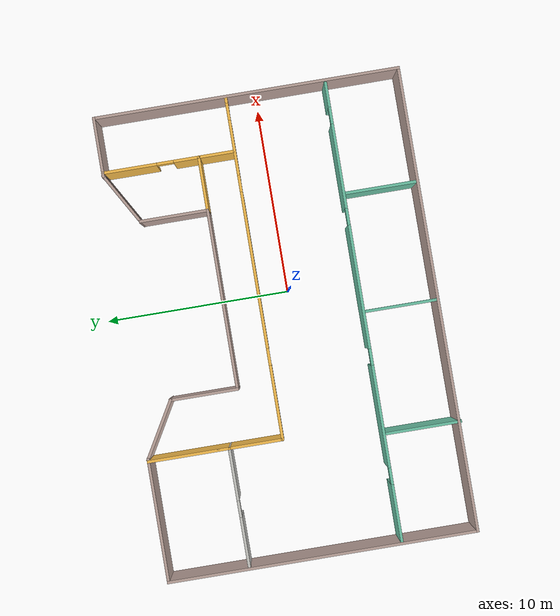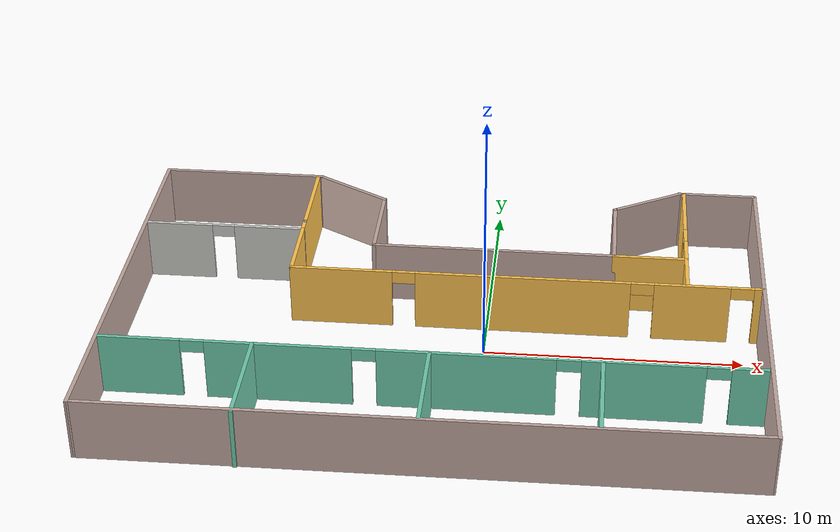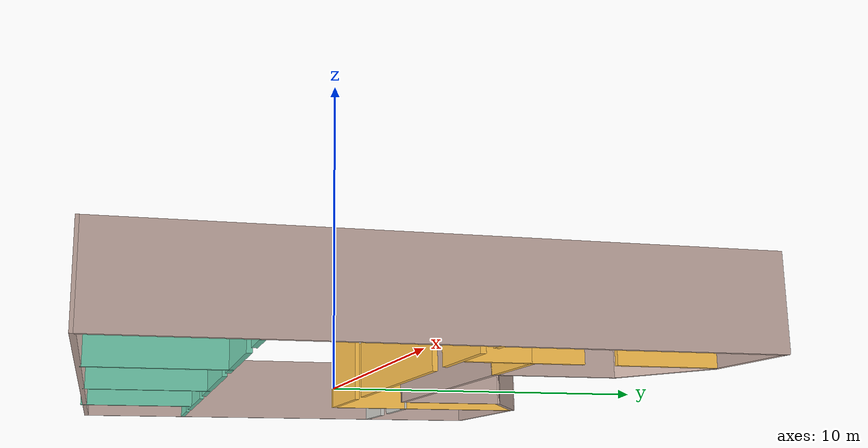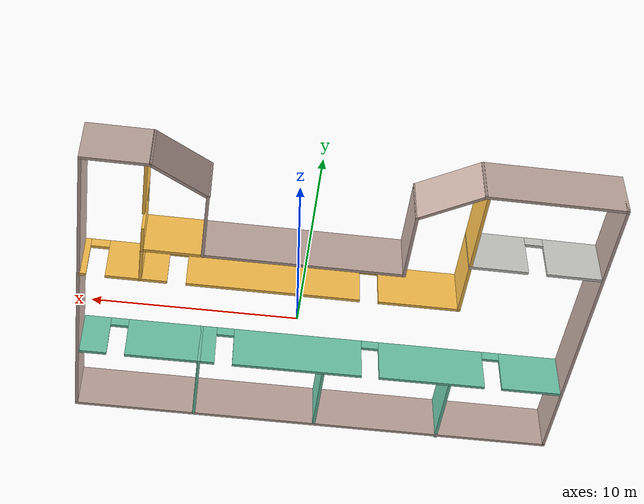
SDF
<?xml version='1.0'?>
<sdf version='1.6'>
  <model name='Building'>
    <pose frame=''>-1.76271 0.500528 0 0 -0 0</pose>
    <link name='Wall_10'>
      <collision name='Wall_10_Collision'>
        <geometry>
          <box>
            <size>3.25 0.15 2.5</size>
          </box>
        </geometry>
        <pose frame=''>0 0 1.25 0 -0 0</pose>
      </collision>
      <visual name='Wall_10_Visual'>
        <pose frame=''>0 0 1.25 0 -0 0</pose>
        <geometry>
          <box>
            <size>3.25 0.15 2.5</size>
          </box>
        </geometry>
        <material>
          <script>
            <uri>file://media/materials/scripts/gazebo.material</uri>
            <name>Gazebo/Grey</name>
          </script>
          <ambient>0.760784 0.662745 0.627451 1</ambient>
        </material>
        <meta>
          <layer>0</layer>
        </meta>
      </visual>
      <pose frame=''>10.8929 8.18406 0 0 -0 0</pose>
    </link>
    <link name='Wall_11'>
      <collision name='Wall_11_Collision'>
        <geometry>
          <box>
            <size>16.5 0.15 2.5</size>
          </box>
        </geometry>
        <pose frame=''>0 0 1.25 0 -0 0</pose>
      </collision>
      <visual name='Wall_11_Visual'>
        <pose frame=''>0 0 1.25 0 -0 0</pose>
        <geometry>
          <box>
            <size>16.5 0.15 2.5</size>
          </box>
        </geometry>
        <material>
          <script>
            <uri>file://media/materials/scripts/gazebo.material</uri>
            <name>Gazebo/Grey</name>
          </script>
          <ambient>0.760784 0.662745 0.627451 1</ambient>
        </material>
        <meta>
          <layer>0</layer>
        </meta>
      </visual>
      <pose frame=''>12.4429 0.009057 0 0 0 -1.5708</pose>
    </link>
    <link name='Wall_12'>
      <collision name='Wall_12_Collision'>
        <geometry>
          <box>
            <size>25.0362 0.15 2.5</size>
          </box>
        </geometry>
        <pose frame=''>0 0 1.25 0 -0 0</pose>
      </collision>
      <visual name='Wall_12_Visual'>
        <pose frame=''>0 0 1.25 0 -0 0</pose>
        <geometry>
          <box>
            <size>25.0362 0.15 2.5</size>
          </box>
        </geometry>
        <material>
          <script>
            <uri>file://media/materials/scripts/gazebo.material</uri>
            <name>Gazebo/Grey</name>
          </script>
          <ambient>0.760784 0.662745 0.627451 1</ambient>
        </material>
        <meta>
          <layer>0</layer>
        </meta>
      </visual>
      <pose frame=''>0 -8.22844 0 0 0 -3.13657</pose>
    </link>
    <link name='Wall_2'>
      <collision name='Wall_2_Collision'>
        <geometry>
          <box>
            <size>16.75 0.15 2.5</size>
          </box>
        </geometry>
        <pose frame=''>0 0 1.25 0 -0 0</pose>
      </collision>
      <visual name='Wall_2_Visual'>
        <pose frame=''>0 0 1.25 0 -0 0</pose>
        <geometry>
          <box>
            <size>16.75 0.15 2.5</size>
          </box>
        </geometry>
        <material>
          <script>
            <uri>file://media/materials/scripts/gazebo.material</uri>
            <name>Gazebo/Grey</name>
          </script>
          <ambient>0.760784 0.662745 0.627451 1</ambient>
        </material>
        <meta>
          <layer>0</layer>
        </meta>
      </visual>
      <pose frame=''>-12.4429 0.009057 0 0 0 -1.5708</pose>
    </link>
    <link name='Wall_24'>
      <collision name='Wall_24_Collision'>
        <geometry>
          <box>
            <size>0.15 0.15 2.5</size>
          </box>
        </geometry>
        <pose frame=''>0 0 1.25 0 -0 0</pose>
      </collision>
      <visual name='Wall_24_Visual'>
        <pose frame=''>0 0 1.25 0 -0 0</pose>
        <geometry>
          <box>
            <size>0.15 0.15 2.5</size>
          </box>
        </geometry>
        <material>
          <script>
            <uri>file://media/materials/scripts/gazebo.material</uri>
            <name>Gazebo/Grey</name>
          </script>
          <ambient>0 0 0 0</ambient>
        </material>
        <meta>
          <layer>0</layer>
        </meta>
      </visual>
      <pose frame=''>-5.97046 4.57329 0 0 -0 0</pose>
    </link>
    <link name='Wall_25'>
      <pose frame=''>-9.15897 3.96574 0 0 -0 0.002757</pose>
      <visual name='Wall_25_Visual_0'>
        <pose frame=''>-1.89266 0 1.25 0 -0 0</pose>
        <geometry>
          <box>
            <size>2.74392 0.15 2.5</size>
          </box>
        </geometry>
        <material>
          <script>
            <uri>file://media/materials/scripts/gazebo.material</uri>
            <name>Gazebo/CeilingTiled</name>
          </script>
          <ambient>1 1 1 1</ambient>
        </material>
        <meta>
          <layer>0</layer>
        </meta>
      </visual>
      <collision name='Wall_25_Collision_0'>
        <geometry>
          <box>
            <size>2.74392 0.15 2.5</size>
          </box>
        </geometry>
        <pose frame=''>-1.89266 0 1.25 0 -0 0</pose>
      </collision>
      <visual name='Wall_25_Visual_1'>
        <pose frame=''>1.82196 0 1.25 0 -0 0</pose>
        <geometry>
          <box>
            <size>2.88532 0.15 2.5</size>
          </box>
        </geometry>
        <material>
          <script>
            <uri>file://media/materials/scripts/gazebo.material</uri>
            <name>Gazebo/CeilingTiled</name>
          </script>
          <ambient>1 1 1 1</ambient>
        </material>
        <meta>
          <layer>0</layer>
        </meta>
      </visual>
      <collision name='Wall_25_Collision_1'>
        <geometry>
          <box>
            <size>2.88532 0.15 2.5</size>
          </box>
        </geometry>
        <pose frame=''>1.82196 0 1.25 0 -0 0</pose>
      </collision>
      <visual name='Wall_25_Visual_2'>
        <pose frame=''>-0.070705 0 2.25 0 -0 0</pose>
        <geometry>
          <box>
            <size>0.9 0.15 0.5</size>
          </box>
        </geometry>
        <material>
          <script>
            <uri>file://media/materials/scripts/gazebo.material</uri>
            <name>Gazebo/CeilingTiled</name>
          </script>
          <ambient>1 1 1 1</ambient>
        </material>
        <meta>
          <layer>0</layer>
        </meta>
      </visual>
      <collision name='Wall_25_Collision_2'>
        <geometry>
          <box>
            <size>0.9 0.15 0.5</size>
          </box>
        </geometry>
        <pose frame=''>-0.070705 0 2.25 0 -0 0</pose>
      </collision>
    </link>
    <link name='Wall_26'>
      <collision name='Wall_26_Collision'>
        <geometry>
          <box>
            <size>4.48241 0.15 2.5</size>
          </box>
        </geometry>
        <pose frame=''>0 0 1.25 0 -0 0</pose>
      </collision>
      <visual name='Wall_26_Visual'>
        <pose frame=''>0 0 1.25 0 -0 0</pose>
        <geometry>
          <box>
            <size>4.48241 0.15 2.5</size>
          </box>
        </geometry>
        <material>
          <script>
            <uri>file://media/materials/scripts/gazebo.material</uri>
            <name>Gazebo/Grey</name>
          </script>
          <ambient>1 0.764706 0.305882 1</ambient>
        </material>
        <meta>
          <layer>0</layer>
        </meta>
      </visual>
      <pose frame=''>-5.9694 6.14074 0 0 -0 1.5708</pose>
    </link>
    <link name='Wall_34'>
      <pose frame=''>-0.025499 -4.23651 0 0 -0 0</pose>
      <visual name='Wall_34_Visual_0'>
        <pose frame=''>-10.8138 0 1.25 0 -0 0</pose>
        <geometry>
          <box>
            <size>3.12241 0.15 2.5</size>
          </box>
        </geometry>
        <material>
          <script>
            <uri>file://media/materials/scripts/gazebo.material</uri>
            <name>Gazebo/Grey</name>
          </script>
          <ambient>0.435294 0.796078 0.67451 1</ambient>
        </material>
        <meta>
          <layer>0</layer>
        </meta>
      </visual>
      <collision name='Wall_34_Collision_0'>
        <geometry>
          <box>
            <size>3.12241 0.15 2.5</size>
          </box>
        </geometry>
        <pose frame=''>-10.8138 0 1.25 0 -0 0</pose>
      </collision>
      <visual name='Wall_34_Visual_1'>
        <pose frame=''>-5.60111 0 1.25 0 -0 0</pose>
        <geometry>
          <box>
            <size>5.50295 0.15 2.5</size>
          </box>
        </geometry>
        <material>
          <script>
            <uri>file://media/materials/scripts/gazebo.material</uri>
            <name>Gazebo/Grey</name>
          </script>
          <ambient>0.435294 0.796078 0.67451 1</ambient>
        </material>
        <meta>
          <layer>0</layer>
        </meta>
      </visual>
      <collision name='Wall_34_Collision_1'>
        <geometry>
          <box>
            <size>5.50295 0.15 2.5</size>
          </box>
        </geometry>
        <pose frame=''>-5.60111 0 1.25 0 -0 0</pose>
      </collision>
      <visual name='Wall_34_Visual_2'>
        <pose frame=''>1.36681 0 1.25 0 -0 0</pose>
        <geometry>
          <box>
            <size>6.63288 0.15 2.5</size>
          </box>
        </geometry>
        <material>
          <script>
            <uri>file://media/materials/scripts/gazebo.material</uri>
            <name>Gazebo/Grey</name>
          </script>
          <ambient>0.435294 0.796078 0.67451 1</ambient>
        </material>
        <meta>
          <layer>0</layer>
        </meta>
      </visual>
      <collision name='Wall_34_Collision_2'>
        <geometry>
          <box>
            <size>6.63288 0.15 2.5</size>
          </box>
        </geometry>
        <pose frame=''>1.36681 0 1.25 0 -0 0</pose>
      </collision>
      <visual name='Wall_34_Visual_3'>
        <pose frame=''>7.85047 0 1.25 0 -0 0</pose>
        <geometry>
          <box>
            <size>4.53444 0.15 2.5</size>
          </box>
        </geometry>
        <material>
          <script>
            <uri>file://media/materials/scripts/gazebo.material</uri>
            <name>Gazebo/Grey</name>
          </script>
          <ambient>0.435294 0.796078 0.67451 1</ambient>
        </material>
        <meta>
          <layer>0</layer>
        </meta>
      </visual>
      <collision name='Wall_34_Collision_3'>
        <geometry>
          <box>
            <size>4.53444 0.15 2.5</size>
          </box>
        </geometry>
        <pose frame=''>7.85047 0 1.25 0 -0 0</pose>
      </collision>
      <visual name='Wall_34_Visual_4'>
        <pose frame=''>11.6963 0 1.25 0 -0 0</pose>
        <geometry>
          <box>
            <size>1.35731 0.15 2.5</size>
          </box>
        </geometry>
        <material>
          <script>
            <uri>file://media/materials/scripts/gazebo.material</uri>
            <name>Gazebo/Grey</name>
          </script>
          <ambient>0.435294 0.796078 0.67451 1</ambient>
        </material>
        <meta>
          <layer>0</layer>
        </meta>
      </visual>
      <collision name='Wall_34_Collision_4'>
        <geometry>
          <box>
            <size>1.35731 0.15 2.5</size>
          </box>
        </geometry>
        <pose frame=''>11.6963 0 1.25 0 -0 0</pose>
      </collision>
      <visual name='Wall_34_Visual_5'>
        <pose frame=''>-8.80259 0 2.25 0 -0 0</pose>
        <geometry>
          <box>
            <size>0.9 0.15 0.5</size>
          </box>
        </geometry>
        <material>
          <script>
            <uri>file://media/materials/scripts/gazebo.material</uri>
            <name>Gazebo/Grey</name>
          </script>
          <ambient>0.435294 0.796078 0.67451 1</ambient>
        </material>
        <meta>
          <layer>0</layer>
        </meta>
      </visual>
      <collision name='Wall_34_Collision_5'>
        <geometry>
          <box>
            <size>0.9 0.15 0.5</size>
          </box>
        </geometry>
        <pose frame=''>-8.80259 0 2.25 0 -0 0</pose>
      </collision>
      <visual name='Wall_34_Visual_6'>
        <pose frame=''>-2.39964 0 2.25 0 -0 0</pose>
        <geometry>
          <box>
            <size>0.9 0.15 0.5</size>
          </box>
        </geometry>
        <material>
          <script>
            <uri>file://media/materials/scripts/gazebo.material</uri>
            <name>Gazebo/Grey</name>
          </script>
          <ambient>0.435294 0.796078 0.67451 1</ambient>
        </material>
        <meta>
          <layer>0</layer>
        </meta>
      </visual>
      <collision name='Wall_34_Collision_6'>
        <geometry>
          <box>
            <size>0.9 0.15 0.5</size>
          </box>
        </geometry>
        <pose frame=''>-2.39964 0 2.25 0 -0 0</pose>
      </collision>
      <visual name='Wall_34_Visual_7'>
        <pose frame=''>5.13325 0 2.25 0 -0 0</pose>
        <geometry>
          <box>
            <size>0.9 0.15 0.5</size>
          </box>
        </geometry>
        <material>
          <script>
            <uri>file://media/materials/scripts/gazebo.material</uri>
            <name>Gazebo/Grey</name>
          </script>
          <ambient>0.435294 0.796078 0.67451 1</ambient>
        </material>
        <meta>
          <layer>0</layer>
        </meta>
      </visual>
      <collision name='Wall_34_Collision_7'>
        <geometry>
          <box>
            <size>0.9 0.15 0.5</size>
          </box>
        </geometry>
        <pose frame=''>5.13325 0 2.25 0 -0 0</pose>
      </collision>
      <visual name='Wall_34_Visual_8'>
        <pose frame=''>10.5677 0 2.25 0 -0 0</pose>
        <geometry>
          <box>
            <size>0.9 0.15 0.5</size>
          </box>
        </geometry>
        <material>
          <script>
            <uri>file://media/materials/scripts/gazebo.material</uri>
            <name>Gazebo/Grey</name>
          </script>
          <ambient>0.435294 0.796078 0.67451 1</ambient>
        </material>
        <meta>
          <layer>0</layer>
        </meta>
      </visual>
      <collision name='Wall_34_Collision_8'>
        <geometry>
          <box>
            <size>0.9 0.15 0.5</size>
          </box>
        </geometry>
        <pose frame=''>10.5677 0 2.25 0 -0 0</pose>
      </collision>
    </link>
    <link name='Wall_36'>
      <collision name='Wall_36_Collision'>
        <geometry>
          <box>
            <size>4.25 0.15 2.5</size>
          </box>
        </geometry>
        <pose frame=''>0 0 1.25 0 -0 0</pose>
      </collision>
      <visual name='Wall_36_Visual'>
        <pose frame=''>0 0 1.25 0 -0 0</pose>
        <geometry>
          <box>
            <size>4.25 0.15 2.5</size>
          </box>
        </geometry>
        <material>
          <script>
            <uri>file://media/materials/scripts/gazebo.material</uri>
            <name>Gazebo/Grey</name>
          </script>
          <ambient>0.435294 0.796078 0.67451 1</ambient>
        </material>
        <meta>
          <layer>0</layer>
        </meta>
      </visual>
      <pose frame=''>-6.56822 -6.28651 0 0 0 -1.5708</pose>
    </link>
    <link name='Wall_38'>
      <collision name='Wall_38_Collision'>
        <geometry>
          <box>
            <size>4 0.15 2.5</size>
          </box>
        </geometry>
        <pose frame=''>0 0 1.25 0 -0 0</pose>
      </collision>
      <visual name='Wall_38_Visual'>
        <pose frame=''>0 0 1.25 0 -0 0</pose>
        <geometry>
          <box>
            <size>4 0.15 2.5</size>
          </box>
        </geometry>
        <material>
          <script>
            <uri>file://media/materials/scripts/gazebo.material</uri>
            <name>Gazebo/Grey</name>
          </script>
          <ambient>0.435294 0.796078 0.67451 1</ambient>
        </material>
        <meta>
          <layer>0</layer>
        </meta>
      </visual>
      <pose frame=''>-0.003852 -6.21531 0 0 0 -1.5708</pose>
    </link>
    <link name='Wall_4'>
      <collision name='Wall_4_Collision'>
        <geometry>
          <box>
            <size>6.75 0.15 2.5</size>
          </box>
        </geometry>
        <pose frame=''>0 0 1.25 0 -0 0</pose>
      </collision>
      <visual name='Wall_4_Visual'>
        <pose frame=''>0 0 1.25 0 -0 0</pose>
        <geometry>
          <box>
            <size>6.75 0.15 2.5</size>
          </box>
        </geometry>
        <material>
          <script>
            <uri>file://media/materials/scripts/gazebo.material</uri>
            <name>Gazebo/Grey</name>
          </script>
          <ambient>0.760784 0.662745 0.627451 1</ambient>
        </material>
        <meta>
          <layer>0</layer>
        </meta>
      </visual>
      <pose frame=''>-9.14293 8.30906 0 0 -0 0</pose>
    </link>
    <link name='Wall_40'>
      <collision name='Wall_40_Collision'>
        <geometry>
          <box>
            <size>4 0.15 2.5</size>
          </box>
        </geometry>
        <pose frame=''>0 0 1.25 0 -0 0</pose>
      </collision>
      <visual name='Wall_40_Visual'>
        <pose frame=''>0 0 1.25 0 -0 0</pose>
        <geometry>
          <box>
            <size>4 0.15 2.5</size>
          </box>
        </geometry>
        <material>
          <script>
            <uri>file://media/materials/scripts/gazebo.material</uri>
            <name>Gazebo/Grey</name>
          </script>
          <ambient>0.435294 0.796078 0.67451 1</ambient>
        </material>
        <meta>
          <layer>0</layer>
        </meta>
      </visual>
      <pose frame=''>6.34529 -6.16151 0 0 0 -1.5708</pose>
    </link>
    <link name='Wall_42'>
      <collision name='Wall_42_Collision'>
        <geometry>
          <box>
            <size>3 0.15 2.5</size>
          </box>
        </geometry>
        <pose frame=''>0 0 1.25 0 -0 0</pose>
      </collision>
      <visual name='Wall_42_Visual'>
        <pose frame=''>0 0 1.25 0 -0 0</pose>
        <geometry>
          <box>
            <size>3 0.15 2.5</size>
          </box>
        </geometry>
        <material>
          <script>
            <uri>file://media/materials/scripts/gazebo.material</uri>
            <name>Gazebo/Grey</name>
          </script>
          <ambient>1 0.764706 0.305882 1</ambient>
        </material>
        <meta>
          <layer>0</layer>
        </meta>
      </visual>
      <pose frame=''>8.08325 3.03406 0 0 -0 0</pose>
    </link>
    <link name='Wall_46'>
      <collision name='Wall_46_Collision'>
        <geometry>
          <box>
            <size>3 0.15 2.5</size>
          </box>
        </geometry>
        <pose frame=''>0 0 1.25 0 -0 0</pose>
      </collision>
      <visual name='Wall_46_Visual'>
        <pose frame=''>0 0 1.25 0 -0 0</pose>
        <geometry>
          <box>
            <size>3 0.15 2.5</size>
          </box>
        </geometry>
        <material>
          <script>
            <uri>file://media/materials/scripts/gazebo.material</uri>
            <name>Gazebo/Grey</name>
          </script>
          <ambient>1 0.764706 0.305882 1</ambient>
        </material>
        <meta>
          <layer>0</layer>
        </meta>
      </visual>
      <pose frame=''>-5.9694 2.53195 0 0 0 -1.5708</pose>
    </link>
    <link name='Wall_5'>
      <collision name='Wall_5_Collision'>
        <geometry>
          <box>
            <size>3.5 0.15 2.5</size>
          </box>
        </geometry>
        <pose frame=''>0 0 1.25 0 -0 0</pose>
      </collision>
      <visual name='Wall_5_Visual'>
        <pose frame=''>0 0 1.25 0 -0 0</pose>
        <geometry>
          <box>
            <size>3.5 0.15 2.5</size>
          </box>
        </geometry>
        <material>
          <script>
            <uri>file://media/materials/scripts/gazebo.material</uri>
            <name>Gazebo/Grey</name>
          </script>
          <ambient>0.760784 0.662745 0.627451 1</ambient>
        </material>
        <meta>
          <layer>0</layer>
        </meta>
      </visual>
      <pose frame=''>-4.39234 7.47156 0 0 0 -0.523599</pose>
    </link>
    <link name='Wall_50'>
      <pose frame=''>3.2056 1.10695 0 0 -0 0</pose>
      <visual name='Wall_50_Visual_0'>
        <pose frame=''>-7.22319 0 1.25 0 -0 0</pose>
        <geometry>
          <box>
            <size>4.05361 0.15 2.5</size>
          </box>
        </geometry>
        <material>
          <script>
            <uri>file://media/materials/scripts/gazebo.material</uri>
            <name>Gazebo/Grey</name>
          </script>
          <ambient>1 0.764706 0.305882 1</ambient>
        </material>
        <meta>
          <layer>0</layer>
        </meta>
      </visual>
      <collision name='Wall_50_Collision_0'>
        <geometry>
          <box>
            <size>4.05361 0.15 2.5</size>
          </box>
        </geometry>
        <pose frame=''>-7.22319 0 1.25 0 -0 0</pose>
      </collision>
      <visual name='Wall_50_Visual_1'>
        <pose frame=''>-0.089024 0 1.25 0 -0 0</pose>
        <geometry>
          <box>
            <size>8.41472 0.15 2.5</size>
          </box>
        </geometry>
        <material>
          <script>
            <uri>file://media/materials/scripts/gazebo.material</uri>
            <name>Gazebo/Grey</name>
          </script>
          <ambient>1 0.764706 0.305882 1</ambient>
        </material>
        <meta>
          <layer>0</layer>
        </meta>
      </visual>
      <collision name='Wall_50_Collision_1'>
        <geometry>
          <box>
            <size>8.41472 0.15 2.5</size>
          </box>
        </geometry>
        <pose frame=''>-0.089024 0 1.25 0 -0 0</pose>
      </collision>
      <visual name='Wall_50_Visual_2'>
        <pose frame=''>6.49473 0 1.25 0 -0 0</pose>
        <geometry>
          <box>
            <size>2.95278 0.15 2.5</size>
          </box>
        </geometry>
        <material>
          <script>
            <uri>file://media/materials/scripts/gazebo.material</uri>
            <name>Gazebo/Grey</name>
          </script>
          <ambient>1 0.764706 0.305882 1</ambient>
        </material>
        <meta>
          <layer>0</layer>
        </meta>
      </visual>
      <collision name='Wall_50_Collision_2'>
        <geometry>
          <box>
            <size>2.95278 0.15 2.5</size>
          </box>
        </geometry>
        <pose frame=''>6.49473 0 1.25 0 -0 0</pose>
      </collision>
      <visual name='Wall_50_Visual_3'>
        <pose frame=''>9.06056 0 1.25 0 -0 0</pose>
        <geometry>
          <box>
            <size>0.378883 0.15 2.5</size>
          </box>
        </geometry>
        <material>
          <script>
            <uri>file://media/materials/scripts/gazebo.material</uri>
            <name>Gazebo/Grey</name>
          </script>
          <ambient>1 0.764706 0.305882 1</ambient>
        </material>
        <meta>
          <layer>0</layer>
        </meta>
      </visual>
      <collision name='Wall_50_Collision_3'>
        <geometry>
          <box>
            <size>0.378883 0.15 2.5</size>
          </box>
        </geometry>
        <pose frame=''>9.06056 0 1.25 0 -0 0</pose>
      </collision>
      <visual name='Wall_50_Visual_4'>
        <pose frame=''>-4.74639 0 2.25 0 -0 0</pose>
        <geometry>
          <box>
            <size>0.9 0.15 0.5</size>
          </box>
        </geometry>
        <material>
          <script>
            <uri>file://media/materials/scripts/gazebo.material</uri>
            <name>Gazebo/Grey</name>
          </script>
          <ambient>1 0.764706 0.305882 1</ambient>
        </material>
        <meta>
          <layer>0</layer>
        </meta>
      </visual>
      <collision name='Wall_50_Collision_4'>
        <geometry>
          <box>
            <size>0.9 0.15 0.5</size>
          </box>
        </geometry>
        <pose frame=''>-4.74639 0 2.25 0 -0 0</pose>
      </collision>
      <visual name='Wall_50_Visual_5'>
        <pose frame=''>4.56834 0 2.25 0 -0 0</pose>
        <geometry>
          <box>
            <size>0.9 0.15 0.5</size>
          </box>
        </geometry>
        <material>
          <script>
            <uri>file://media/materials/scripts/gazebo.material</uri>
            <name>Gazebo/Grey</name>
          </script>
          <ambient>1 0.764706 0.305882 1</ambient>
        </material>
        <meta>
          <layer>0</layer>
        </meta>
      </visual>
      <collision name='Wall_50_Collision_5'>
        <geometry>
          <box>
            <size>0.9 0.15 0.5</size>
          </box>
        </geometry>
        <pose frame=''>4.56834 0 2.25 0 -0 0</pose>
      </collision>
      <visual name='Wall_50_Visual_6'>
        <pose frame=''>8.42112 0 2.25 0 -0 0</pose>
        <geometry>
          <box>
            <size>0.9 0.15 0.5</size>
          </box>
        </geometry>
        <material>
          <script>
            <uri>file://media/materials/scripts/gazebo.material</uri>
            <name>Gazebo/Grey</name>
          </script>
          <ambient>1 0.764706 0.305882 1</ambient>
        </material>
        <meta>
          <layer>0</layer>
        </meta>
      </visual>
      <collision name='Wall_50_Collision_6'>
        <geometry>
          <box>
            <size>0.9 0.15 0.5</size>
          </box>
        </geometry>
        <pose frame=''>8.42112 0 2.25 0 -0 0</pose>
      </collision>
    </link>
    <link name='Wall_52'>
      <pose frame=''>9.50825 5.58406 0 0 -0 1.5708</pose>
      <visual name='Wall_52_Visual_0'>
        <pose frame=''>-1.90895 0 1.25 0 -0 0</pose>
        <geometry>
          <box>
            <size>1.43209 0.15 2.5</size>
          </box>
        </geometry>
        <material>
          <script>
            <uri>file://media/materials/scripts/gazebo.material</uri>
            <name>Gazebo/Grey</name>
          </script>
          <ambient>1 0.764706 0.305882 1</ambient>
        </material>
        <meta>
          <layer>0</layer>
        </meta>
      </visual>
      <collision name='Wall_52_Collision_0'>
        <geometry>
          <box>
            <size>1.43209 0.15 2.5</size>
          </box>
        </geometry>
        <pose frame=''>-1.90895 0 1.25 0 -0 0</pose>
      </collision>
      <visual name='Wall_52_Visual_1'>
        <pose frame=''>1.16605 0 1.25 0 -0 0</pose>
        <geometry>
          <box>
            <size>2.91791 0.15 2.5</size>
          </box>
        </geometry>
        <material>
          <script>
            <uri>file://media/materials/scripts/gazebo.material</uri>
            <name>Gazebo/Grey</name>
          </script>
          <ambient>1 0.764706 0.305882 1</ambient>
        </material>
        <meta>
          <layer>0</layer>
        </meta>
      </visual>
      <collision name='Wall_52_Collision_1'>
        <geometry>
          <box>
            <size>2.91791 0.15 2.5</size>
          </box>
        </geometry>
        <pose frame=''>1.16605 0 1.25 0 -0 0</pose>
      </collision>
      <visual name='Wall_52_Visual_2'>
        <pose frame=''>-0.742905 0 2.25 0 -0 0</pose>
        <geometry>
          <box>
            <size>0.9 0.15 0.5</size>
          </box>
        </geometry>
        <material>
          <script>
            <uri>file://media/materials/scripts/gazebo.material</uri>
            <name>Gazebo/Grey</name>
          </script>
          <ambient>1 0.764706 0.305882 1</ambient>
        </material>
        <meta>
          <layer>0</layer>
        </meta>
      </visual>
      <collision name='Wall_52_Collision_2'>
        <geometry>
          <box>
            <size>0.9 0.15 0.5</size>
          </box>
        </geometry>
        <pose frame=''>-0.742905 0 2.25 0 -0 0</pose>
      </collision>
    </link>
    <link name='Wall_54'>
      <collision name='Wall_54_Collision'>
        <geometry>
          <box>
            <size>2 0.15 2.5</size>
          </box>
        </geometry>
        <pose frame=''>0 0 1.25 0 -0 0</pose>
      </collision>
      <visual name='Wall_54_Visual'>
        <pose frame=''>0 0 1.25 0 -0 0</pose>
        <geometry>
          <box>
            <size>2 0.15 2.5</size>
          </box>
        </geometry>
        <material>
          <script>
            <uri>file://media/materials/scripts/gazebo.material</uri>
            <name>Gazebo/Grey</name>
          </script>
          <ambient>1 0.764706 0.305882 1</ambient>
        </material>
        <meta>
          <layer>0</layer>
        </meta>
      </visual>
      <pose frame=''>9.50825 2.10906 0 0 0 -1.5708</pose>
    </link>
    <link name='Wall_6'>
      <collision name='Wall_6_Collision'>
        <geometry>
          <box>
            <size>3.75 0.15 2.5</size>
          </box>
        </geometry>
        <pose frame=''>0 0 1.25 0 -0 0</pose>
      </collision>
      <visual name='Wall_6_Visual'>
        <pose frame=''>0 0 1.25 0 -0 0</pose>
        <geometry>
          <box>
            <size>3.75 0.15 2.5</size>
          </box>
        </geometry>
        <material>
          <script>
            <uri>file://media/materials/scripts/gazebo.material</uri>
            <name>Gazebo/Grey</name>
          </script>
          <ambient>0.760784 0.662745 0.627451 1</ambient>
        </material>
        <meta>
          <layer>0</layer>
        </meta>
      </visual>
      <pose frame=''>-2.94175 4.83406 0 0 0 -1.5708</pose>
    </link>
    <link name='Wall_7'>
      <collision name='Wall_7_Collision'>
        <geometry>
          <box>
            <size>9.75 0.15 2.5</size>
          </box>
        </geometry>
        <pose frame=''>0 0 1.25 0 -0 0</pose>
      </collision>
      <visual name='Wall_7_Visual'>
        <pose frame=''>0 0 1.25 0 -0 0</pose>
        <geometry>
          <box>
            <size>9.75 0.15 2.5</size>
          </box>
        </geometry>
        <material>
          <script>
            <uri>file://media/materials/scripts/gazebo.material</uri>
            <name>Gazebo/Grey</name>
          </script>
          <ambient>0.760784 0.662745 0.627451 1</ambient>
        </material>
        <meta>
          <layer>0</layer>
        </meta>
      </visual>
      <pose frame=''>1.85825 3.03406 0 0 -0 0</pose>
    </link>
    <link name='Wall_8'>
      <collision name='Wall_8_Collision'>
        <geometry>
          <box>
            <size>3.75 0.15 2.5</size>
          </box>
        </geometry>
        <pose frame=''>0 0 1.25 0 -0 0</pose>
      </collision>
      <visual name='Wall_8_Visual'>
        <pose frame=''>0 0 1.25 0 -0 0</pose>
        <geometry>
          <box>
            <size>3.75 0.15 2.5</size>
          </box>
        </geometry>
        <material>
          <script>
            <uri>file://media/materials/scripts/gazebo.material</uri>
            <name>Gazebo/Grey</name>
          </script>
          <ambient>0.760784 0.662745 0.627451 1</ambient>
        </material>
        <meta>
          <layer>0</layer>
        </meta>
      </visual>
      <pose frame=''>6.65825 4.83406 0 0 -0 1.5708</pose>
    </link>
    <link name='Wall_9'>
      <collision name='Wall_9_Collision'>
        <geometry>
          <box>
            <size>3.25 0.15 2.5</size>
          </box>
        </geometry>
        <pose frame=''>0 0 1.25 0 -0 0</pose>
      </collision>
      <visual name='Wall_9_Visual'>
        <pose frame=''>0 0 1.25 0 -0 0</pose>
        <geometry>
          <box>
            <size>3.25 0.15 2.5</size>
          </box>
        </geometry>
        <material>
          <script>
            <uri>file://media/materials/scripts/gazebo.material</uri>
            <name>Gazebo/Grey</name>
          </script>
          <ambient>0.760784 0.662745 0.627451 1</ambient>
        </material>
        <meta>
          <layer>0</layer>
        </meta>
      </visual>
      <pose frame=''>8.00059 7.40906 0 0 -0 0.523599</pose>
    </link>
    <static>1</static>
  </model>
</sdf>
